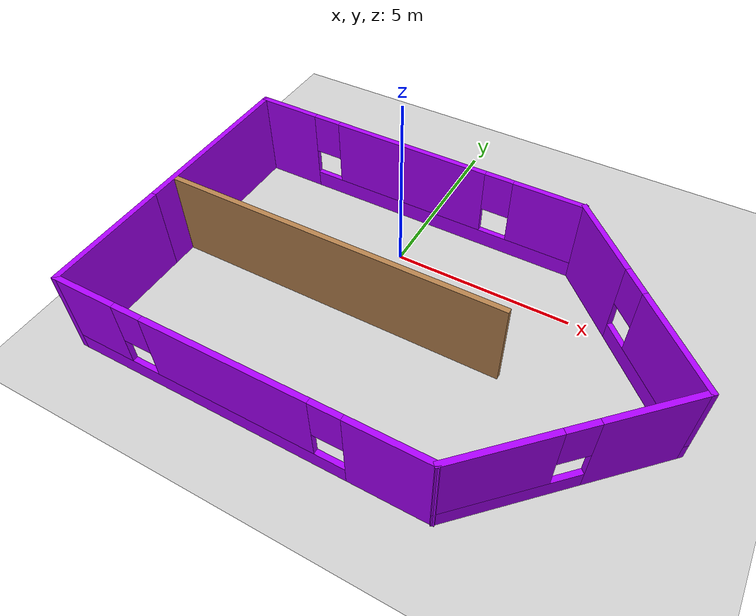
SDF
<sdf version="1.6">
 <world name="default">
  <light name="sun" type="directional">
   <pose>0 0 10 0 -0 0</pose>
   <diffuse>0.8 0.8 0.8 1</diffuse>
   <specular>0.1 0.1 0.1 1</specular>
   <attenuation>
    <range>1000</range>
    <constant>0.9</constant>
    <linear>0.01</linear>
    <quadratic>0.001</quadratic>
   </attenuation>
   <direction>-0.5 0.5 -1</direction>
  </light>
  <model name="ground_plane">
   <static>1</static>
   <link name="link">
    <collision name="collision">
     <geometry><plane><normal>0 0 1</normal><size>100 100</size></plane></geometry>
     <surface><friction><ode><mu>100</mu><mu2>50</mu2></ode></friction></surface>
    </collision>
    <visual name="visual">
     <cast_shadows>0</cast_shadows>
     <geometry><plane><normal>0 0 1</normal><size>100 100</size></plane></geometry>
     <material>
      <script><uri>file://media/materials/scripts/gazebo.material</uri><name>Gazebo/Grey</name></script>
     </material>
    </visual>
   </link>
  </model>
  <gravity>0 0 -9.8</gravity>
  <magnetic_field>6e-06 2.3e-05 -4.2e-05</magnetic_field>
  <atmosphere type="adiabatic"/>
  <physics name="default_physics" default="0" type="ode">
   <max_step_size>0.001</max_step_size>
   <real_time_factor>1</real_time_factor>
   <real_time_update_rate>1000</real_time_update_rate>
  </physics>
  <scene><ambient>0.4 0.4 0.4 1</ambient><background>0.7 0.7 0.7 1</background><shadows>1</shadows></scene>
  <spherical_coordinates>
   <surface_model>EARTH_WGS84</surface_model>
   <latitude_deg>0</latitude_deg>
   <longitude_deg>0</longitude_deg>
   <elevation>0</elevation>
   <heading_deg>0</heading_deg>
  </spherical_coordinates>
  <model name="testworld3">
   <pose>1.53304 -2.46735 0 0 -0 0</pose>
   <link name="Wall_0">
    <collision name="Wall_0_Collision">
     <geometry><box><size>5 0.15 2.5</size></box></geometry>
     <pose>0 0 1.25 0 -0 0</pose>
    </collision>
    <visual name="Wall_0_Visual">
     <pose>0 0 1.25 0 -0 0</pose>
     <geometry><box><size>5 0.15 2.5</size></box></geometry>
     <material>
      <script><uri>file://media/materials/scripts/gazebo.material</uri><name>Gazebo/Grey</name></script>
      <ambient>0.666667 0 1 1</ambient>
     </material>
    </visual>
    <pose>-7.00882 1.71158 0 0 -0 1.5708</pose>
   </link>
   <link name="Wall_1">
    <pose>-2.08382 4.13657 0 0 -0 0</pose>
    <visual name="Wall_1_Visual_0">
     <pose>-4.0774 0 1.25 0 -0 0</pose>
     <geometry><box><size>1.84521 0.15 2.5</size></box></geometry>
     <material>
      <script><uri>file://media/materials/scripts/gazebo.material</uri><name>Gazebo/Grey</name></script>
      <ambient>0.666667 0 1 1</ambient>
     </material>
    </visual>
    <collision name="Wall_1_Collision_0">
     <geometry><box><size>1.84521 0.15 2.5</size></box></geometry>
     <pose>-4.0774 0 1.25 0 -0 0</pose>
    </collision>
    <visual name="Wall_1_Visual_1">
     <pose>0.922603 0 0.25 0 -0 0</pose>
     <geometry><box><size>8.15479 0.15 0.5</size></box></geometry>
     <material>
      <script><uri>file://media/materials/scripts/gazebo.material</uri><name>Gazebo/Grey</name></script>
      <ambient>0.666667 0 1 1</ambient>
     </material>
    </visual>
    <collision name="Wall_1_Collision_1">
     <geometry><box><size>8.15479 0.15 0.5</size></box></geometry>
     <pose>0.922603 0 0.25 0 -0 0</pose>
    </collision>
    <visual name="Wall_1_Visual_2">
     <pose>-0.083208 0 1.5 0 -0 0</pose>
     <geometry><box><size>4.54317 0.15 2</size></box></geometry>
     <material>
      <script><uri>file://media/materials/scripts/gazebo.material</uri><name>Gazebo/Grey</name></script>
      <ambient>0.666667 0 1 1</ambient>
     </material>
    </visual>
    <collision name="Wall_1_Collision_2">
     <geometry><box><size>4.54317 0.15 2</size></box></geometry>
     <pose>-0.083208 0 1.5 0 -0 0</pose>
    </collision>
    <visual name="Wall_1_Visual_3">
     <pose>3.99419 0 1.5 0 -0 0</pose>
     <geometry><box><size>2.01162 0.15 2</size></box></geometry>
     <material>
      <script><uri>file://media/materials/scripts/gazebo.material</uri><name>Gazebo/Grey</name></script>
      <ambient>0.666667 0 1 1</ambient>
     </material>
    </visual>
    <collision name="Wall_1_Collision_3">
     <geometry><box><size>2.01162 0.15 2</size></box></geometry>
     <pose>3.99419 0 1.5 0 -0 0</pose>
    </collision>
    <visual name="Wall_1_Visual_4">
     <pose>-2.75479 0 1.9 0 -0 0</pose>
     <geometry><box><size>0.8 0.15 1.2</size></box></geometry>
     <material>
      <script><uri>file://media/materials/scripts/gazebo.material</uri><name>Gazebo/Grey</name></script>
      <ambient>0.666667 0 1 1</ambient>
     </material>
    </visual>
    <collision name="Wall_1_Collision_4">
     <geometry><box><size>0.8 0.15 1.2</size></box></geometry>
     <pose>-2.75479 0 1.9 0 -0 0</pose>
    </collision>
    <visual name="Wall_1_Visual_5">
     <pose>2.58838 0 1.9 0 -0 0</pose>
     <geometry><box><size>0.8 0.15 1.2</size></box></geometry>
     <material>
      <script><uri>file://media/materials/scripts/gazebo.material</uri><name>Gazebo/Grey</name></script>
      <ambient>0.666667 0 1 1</ambient>
     </material>
    </visual>
    <collision name="Wall_1_Collision_5">
     <geometry><box><size>0.8 0.15 1.2</size></box></geometry>
     <pose>2.58838 0 1.9 0 -0 0</pose>
    </collision>
   </link>
   <link name="Wall_10">
    <collision name="Wall_10_Collision">
     <geometry><box><size>9.5 0.15 2.5</size></box></geometry>
     <pose>0 0 1.25 0 -0 0</pose>
    </collision>
    <visual name="Wall_10_Visual">
     <pose>0 0 1.25 0 -0 0</pose>
     <geometry><box><size>9.5 0.15 2.5</size></box></geometry>
     <material>
      <script><uri>file://media/materials/scripts/gazebo.material</uri><name>Gazebo/Wood</name></script>
      <ambient>1 1 1 1</ambient>
     </material>
    </visual>
    <pose>-2.19725 0 0 0 -0 0</pose>
   </link>
   <link name="Wall_2">
    <pose>4.90947 2.06829 0 0 0 -0.785398</pose>
    <visual name="Wall_2_Visual_0">
     <pose>-1.82822 0 1.25 0 -0 0</pose>
     <geometry><box><size>2.34355 0.15 2.5</size></box></geometry>
     <material>
      <script><uri>file://media/materials/scripts/gazebo.material</uri><name>Gazebo/Grey</name></script>
      <ambient>0.666667 0 1 1</ambient>
     </material>
    </visual>
    <collision name="Wall_2_Collision_0">
     <geometry><box><size>2.34355 0.15 2.5</size></box></geometry>
     <pose>-1.82822 0 1.25 0 -0 0</pose>
    </collision>
    <visual name="Wall_2_Visual_1">
     <pose>1.17178 0 0.25 0 -0 0</pose>
     <geometry><box><size>3.65645 0.15 0.5</size></box></geometry>
     <material>
      <script><uri>file://media/materials/scripts/gazebo.material</uri><name>Gazebo/Grey</name></script>
      <ambient>0.666667 0 1 1</ambient>
     </material>
    </visual>
    <collision name="Wall_2_Collision_1">
     <geometry><box><size>3.65645 0.15 0.5</size></box></geometry>
     <pose>1.17178 0 0.25 0 -0 0</pose>
    </collision>
    <visual name="Wall_2_Visual_2">
     <pose>1.57178 0 1.5 0 -0 0</pose>
     <geometry><box><size>2.85644 0.15 2</size></box></geometry>
     <material>
      <script><uri>file://media/materials/scripts/gazebo.material</uri><name>Gazebo/Grey</name></script>
      <ambient>0.666667 0 1 1</ambient>
     </material>
    </visual>
    <collision name="Wall_2_Collision_2">
     <geometry><box><size>2.85644 0.15 2</size></box></geometry>
     <pose>1.57178 0 1.5 0 -0 0</pose>
    </collision>
    <visual name="Wall_2_Visual_3">
     <pose>-0.256445 0 1.9 0 -0 0</pose>
     <geometry><box><size>0.8 0.15 1.2</size></box></geometry>
     <material>
      <script><uri>file://media/materials/scripts/gazebo.material</uri><name>Gazebo/Grey</name></script>
      <ambient>0.666667 0 1 1</ambient>
     </material>
    </visual>
    <collision name="Wall_2_Collision_3">
     <geometry><box><size>0.8 0.15 1.2</size></box></geometry>
     <pose>-0.256445 0 1.9 0 -0 0</pose>
    </collision>
   </link>
   <link name="Wall_3">
    <pose>4.90947 -2.06829 0 0 0 -2.35619</pose>
    <visual name="Wall_3_Visual_0">
     <pose>-1.72978 0 1.25 0 -0 0</pose>
     <geometry><box><size>2.54043 0.15 2.5</size></box></geometry>
     <material>
      <script><uri>file://media/materials/scripts/gazebo.material</uri><name>Gazebo/Grey</name></script>
      <ambient>0.666667 0 1 1</ambient>
     </material>
    </visual>
    <collision name="Wall_3_Collision_0">
     <geometry><box><size>2.54043 0.15 2.5</size></box></geometry>
     <pose>-1.72978 0 1.25 0 -0 0</pose>
    </collision>
    <visual name="Wall_3_Visual_1">
     <pose>1.27022 0 0.25 0 -0 0</pose>
     <geometry><box><size>3.45957 0.15 0.5</size></box></geometry>
     <material>
      <script><uri>file://media/materials/scripts/gazebo.material</uri><name>Gazebo/Grey</name></script>
      <ambient>0.666667 0 1 1</ambient>
     </material>
    </visual>
    <collision name="Wall_3_Collision_1">
     <geometry><box><size>3.45957 0.15 0.5</size></box></geometry>
     <pose>1.27022 0 0.25 0 -0 0</pose>
    </collision>
    <visual name="Wall_3_Visual_2">
     <pose>1.67022 0 1.5 0 -0 0</pose>
     <geometry><box><size>2.65957 0.15 2</size></box></geometry>
     <material>
      <script><uri>file://media/materials/scripts/gazebo.material</uri><name>Gazebo/Grey</name></script>
      <ambient>0.666667 0 1 1</ambient>
     </material>
    </visual>
    <collision name="Wall_3_Collision_2">
     <geometry><box><size>2.65957 0.15 2</size></box></geometry>
     <pose>1.67022 0 1.5 0 -0 0</pose>
    </collision>
    <visual name="Wall_3_Visual_3">
     <pose>-0.059565 0 1.9 0 -0 0</pose>
     <geometry><box><size>0.8 0.15 1.2</size></box></geometry>
     <material>
      <script><uri>file://media/materials/scripts/gazebo.material</uri><name>Gazebo/Grey</name></script>
      <ambient>0.666667 0 1 1</ambient>
     </material>
    </visual>
    <collision name="Wall_3_Collision_3">
     <geometry><box><size>0.8 0.15 1.2</size></box></geometry>
     <pose>-0.059565 0 1.9 0 -0 0</pose>
    </collision>
   </link>
   <link name="Wall_4">
    <pose>-2.08382 -4.13657 0 0 -0 3.14159</pose>
    <visual name="Wall_4_Visual_0">
     <pose>-3.91323 0 1.25 0 -0 0</pose>
     <geometry><box><size>2.17354 0.15 2.5</size></box></geometry>
     <material>
      <script><uri>file://media/materials/scripts/gazebo.material</uri><name>Gazebo/Grey</name></script>
      <ambient>0.666667 0 1 1</ambient>
     </material>
    </visual>
    <collision name="Wall_4_Collision_0">
     <geometry><box><size>2.17354 0.15 2.5</size></box></geometry>
     <pose>-3.91323 0 1.25 0 -0 0</pose>
    </collision>
    <visual name="Wall_4_Visual_1">
     <pose>1.08677 0 0.25 0 -0 0</pose>
     <geometry><box><size>7.82646 0.15 0.5</size></box></geometry>
     <material>
      <script><uri>file://media/materials/scripts/gazebo.material</uri><name>Gazebo/Grey</name></script>
      <ambient>0.666667 0 1 1</ambient>
     </material>
    </visual>
    <collision name="Wall_4_Collision_1">
     <geometry><box><size>7.82646 0.15 0.5</size></box></geometry>
     <pose>1.08677 0 0.25 0 -0 0</pose>
    </collision>
    <visual name="Wall_4_Visual_2">
     <pose>0.17573 0 1.5 0 -0 0</pose>
     <geometry><box><size>4.40439 0.15 2</size></box></geometry>
     <material>
      <script><uri>file://media/materials/scripts/gazebo.material</uri><name>Gazebo/Grey</name></script>
      <ambient>0.666667 0 1 1</ambient>
     </material>
    </visual>
    <collision name="Wall_4_Collision_2">
     <geometry><box><size>4.40439 0.15 2</size></box></geometry>
     <pose>0.17573 0 1.5 0 -0 0</pose>
    </collision>
    <visual name="Wall_4_Visual_3">
     <pose>4.08896 0 1.5 0 -0 0</pose>
     <geometry><box><size>1.82208 0.15 2</size></box></geometry>
     <material>
      <script><uri>file://media/materials/scripts/gazebo.material</uri><name>Gazebo/Grey</name></script>
      <ambient>0.666667 0 1 1</ambient>
     </material>
    </visual>
    <collision name="Wall_4_Collision_3">
     <geometry><box><size>1.82208 0.15 2</size></box></geometry>
     <pose>4.08896 0 1.5 0 -0 0</pose>
    </collision>
    <visual name="Wall_4_Visual_4">
     <pose>-2.42646 0 1.9 0 -0 0</pose>
     <geometry><box><size>0.8 0.15 1.2</size></box></geometry>
     <material>
      <script><uri>file://media/materials/scripts/gazebo.material</uri><name>Gazebo/Grey</name></script>
      <ambient>0.666667 0 1 1</ambient>
     </material>
    </visual>
    <collision name="Wall_4_Collision_4">
     <geometry><box><size>0.8 0.15 1.2</size></box></geometry>
     <pose>-2.42646 0 1.9 0 -0 0</pose>
    </collision>
    <visual name="Wall_4_Visual_5">
     <pose>2.77792 0 1.9 0 -0 0</pose>
     <geometry><box><size>0.8 0.15 1.2</size></box></geometry>
     <material>
      <script><uri>file://media/materials/scripts/gazebo.material</uri><name>Gazebo/Grey</name></script>
      <ambient>0.666667 0 1 1</ambient>
     </material>
    </visual>
    <collision name="Wall_4_Collision_5">
     <geometry><box><size>0.8 0.15 1.2</size></box></geometry>
     <pose>2.77792 0 1.9 0 -0 0</pose>
    </collision>
   </link>
   <link name="Wall_5">
    <collision name="Wall_5_Collision">
     <geometry><box><size>3.57315 0.15 2.5</size></box></geometry>
     <pose>0 0 1.25 0 -0 0</pose>
    </collision>
    <visual name="Wall_5_Visual">
     <pose>0 0 1.25 0 -0 0</pose>
     <geometry><box><size>3.57315 0.15 2.5</size></box></geometry>
     <material>
      <script><uri>file://media/materials/scripts/gazebo.material</uri><name>Gazebo/Grey</name></script>
      <ambient>0.666667 0 1 1</ambient>
     </material>
    </visual>
    <pose>-7.00882 -2.425 0 0 -0 1.5708</pose>
   </link>
   <static>1</static>
  </model>
 </world>
</sdf>
